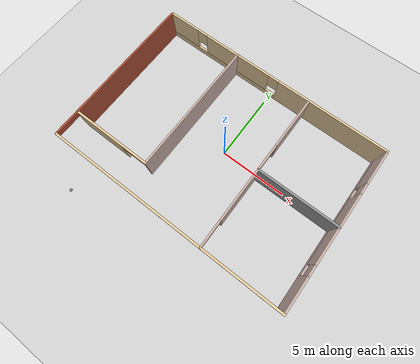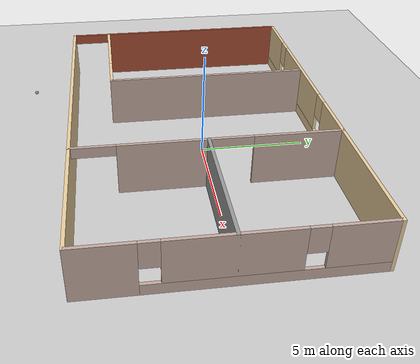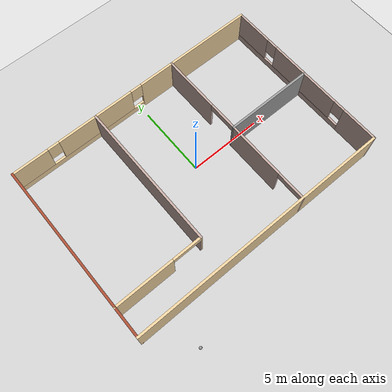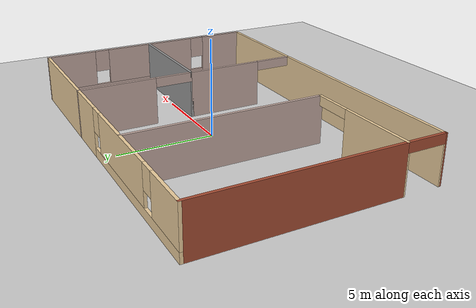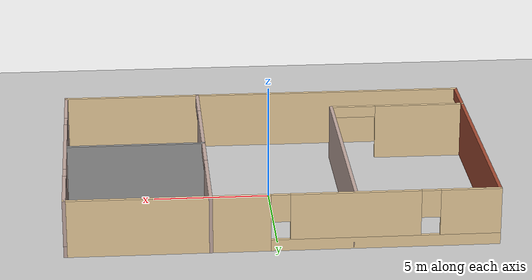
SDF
<sdf version="1.6">
 <world name="default">
  <light name="sun" type="directional">
   <pose>0 0 10 0 -0 0</pose>
   <diffuse>0.8 0.8 0.8 1</diffuse>
   <specular>0.2 0.2 0.2 1</specular>
   <attenuation>
    <range>1000</range>
    <constant>0.9</constant>
    <linear>0.01</linear>
    <quadratic>0.001</quadratic>
   </attenuation>
   <direction>-0.5 0.1 -0.9</direction>
  </light>
  <model name="ground_plane">
   <static>1</static>
   <link name="link">
    <collision name="collision">
     <geometry><plane><normal>0 0 1</normal><size>100 100</size></plane></geometry>
     <surface><friction><ode><mu>100</mu><mu2>50</mu2></ode></friction></surface>
    </collision>
    <visual name="visual">
     <cast_shadows>0</cast_shadows>
     <geometry><plane><normal>0 0 1</normal><size>100 100</size></plane></geometry>
     <material>
      <script><uri>file://media/materials/scripts/gazebo.material</uri><name>Gazebo/Grey</name></script>
     </material>
    </visual>
   </link>
  </model>
  <gravity>0 0 -9.8</gravity>
  <magnetic_field>6e-06 2.3e-05 -4.2e-05</magnetic_field>
  <atmosphere type="adiabatic"/>
  <physics name="default_physics" default="0" type="ode">
   <max_step_size>0.001</max_step_size>
   <real_time_factor>1</real_time_factor>
   <real_time_update_rate>1000</real_time_update_rate>
  </physics>
  <scene><ambient>0.4 0.4 0.4 1</ambient><background>0.7 0.7 0.7 1</background><shadows>1</shadows></scene>
  <spherical_coordinates>
   <surface_model>EARTH_WGS84</surface_model>
   <latitude_deg>0</latitude_deg>
   <longitude_deg>0</longitude_deg>
   <elevation>0</elevation>
   <heading_deg>0</heading_deg>
  </spherical_coordinates>
  <model name="building">
   <pose>-0.188098 -0.21332 0 0 -0 0</pose>
   <link name="Wall_0">
    <collision name="Wall_0_Collision">
     <geometry><box><size>18.15 0.15 2.5</size></box></geometry>
     <pose>0 0 1.25 0 -0 0</pose>
    </collision>
    <visual name="Wall_0_Visual">
     <pose>0 0 1.25 0 -0 0</pose>
     <geometry><box><size>18.15 0.15 2.5</size></box></geometry>
     <material>
      <script><uri>file://media/materials/scripts/gazebo.material</uri><name>Gazebo/Grey</name></script>
      <ambient>0.921569 0.807843 0.615686 1</ambient>
     </material>
     <meta><layer>0</layer></meta>
    </visual>
    <pose>0 -6 0 0 -0 0</pose>
   </link>
   <link name="Wall_10">
    <pose>3 0 0 0 -0 1.5708</pose>
    <visual name="Wall_10_Visual_0">
     <pose>-6.0375 0 1.25 0 -0 0</pose>
     <geometry><box><size>0.075 0.15 2.5</size></box></geometry>
     <material>
      <script><uri>file://media/materials/scripts/gazebo.material</uri><name>Gazebo/Grey</name></script>
      <ambient>0.760784 0.662745 0.627451 1</ambient>
     </material>
     <meta><layer>0</layer></meta>
    </visual>
    <collision name="Wall_10_Collision_0">
     <geometry><box><size>0.075 0.15 2.5</size></box></geometry>
     <pose>-6.0375 0 1.25 0 -0 0</pose>
    </collision>
    <visual name="Wall_10_Visual_1">
     <pose>-2 0 1.25 0 -0 0</pose>
     <geometry><box><size>4 0.15 2.5</size></box></geometry>
     <material>
      <script><uri>file://media/materials/scripts/gazebo.material</uri><name>Gazebo/Grey</name></script>
      <ambient>0.760784 0.662745 0.627451 1</ambient>
     </material>
     <meta><layer>0</layer></meta>
    </visual>
    <collision name="Wall_10_Collision_1">
     <geometry><box><size>4 0.15 2.5</size></box></geometry>
     <pose>-2 0 1.25 0 -0 0</pose>
    </collision>
    <visual name="Wall_10_Visual_2">
     <pose>4.0375 0 1.25 0 -0 0</pose>
     <geometry><box><size>4.075 0.15 2.5</size></box></geometry>
     <material>
      <script><uri>file://media/materials/scripts/gazebo.material</uri><name>Gazebo/Grey</name></script>
      <ambient>0.760784 0.662745 0.627451 1</ambient>
     </material>
     <meta><layer>0</layer></meta>
    </visual>
    <collision name="Wall_10_Collision_2">
     <geometry><box><size>4.075 0.15 2.5</size></box></geometry>
     <pose>4.0375 0 1.25 0 -0 0</pose>
    </collision>
    <visual name="Wall_10_Visual_3">
     <pose>-5 0 2.25 0 -0 0</pose>
     <geometry><box><size>2 0.15 0.5</size></box></geometry>
     <material>
      <script><uri>file://media/materials/scripts/gazebo.material</uri><name>Gazebo/Grey</name></script>
      <ambient>0.760784 0.662745 0.627451 1</ambient>
     </material>
     <meta><layer>0</layer></meta>
    </visual>
    <collision name="Wall_10_Collision_3">
     <geometry><box><size>2 0.15 0.5</size></box></geometry>
     <pose>-5 0 2.25 0 -0 0</pose>
    </collision>
    <visual name="Wall_10_Visual_4">
     <pose>1 0 2.25 0 -0 0</pose>
     <geometry><box><size>2 0.15 0.5</size></box></geometry>
     <material>
      <script><uri>file://media/materials/scripts/gazebo.material</uri><name>Gazebo/Grey</name></script>
      <ambient>0.760784 0.662745 0.627451 1</ambient>
     </material>
     <meta><layer>0</layer></meta>
    </visual>
    <collision name="Wall_10_Collision_4">
     <geometry><box><size>2 0.15 0.5</size></box></geometry>
     <pose>1 0 2.25 0 -0 0</pose>
    </collision>
   </link>
   <link name="Wall_12">
    <collision name="Wall_12_Collision">
     <geometry><box><size>6.15 0.15 2.5</size></box></geometry>
     <pose>0 0 1.25 0 -0 0</pose>
    </collision>
    <visual name="Wall_12_Visual">
     <pose>0 0 1.25 0 -0 0</pose>
     <geometry><box><size>6.15 0.15 2.5</size></box></geometry>
     <material>
      <script><uri>file://media/materials/scripts/gazebo.material</uri><name>Gazebo/Grey</name></script>
      <ambient>1 1 1 1</ambient>
     </material>
     <meta><layer>0</layer></meta>
    </visual>
    <pose>6 0 0 0 -0 0</pose>
   </link>
   <link name="Wall_14">
    <pose>-6 -4 0 0 -0 3.14159</pose>
    <visual name="Wall_14_Visual_0">
     <pose>-3.0375 0 1.25 0 -0 0</pose>
     <geometry><box><size>0.075 0.15 2.5</size></box></geometry>
     <material>
      <script><uri>file://media/materials/scripts/gazebo.material</uri><name>Gazebo/Grey</name></script>
      <ambient>0.921569 0.807843 0.615686 1</ambient>
     </material>
     <meta><layer>0</layer></meta>
    </visual>
    <collision name="Wall_14_Collision_0">
     <geometry><box><size>0.075 0.15 2.5</size></box></geometry>
     <pose>-3.0375 0 1.25 0 -0 0</pose>
    </collision>
    <visual name="Wall_14_Visual_1">
     <pose>1.0375 0 1.25 0 -0 0</pose>
     <geometry><box><size>4.075 0.15 2.5</size></box></geometry>
     <material>
      <script><uri>file://media/materials/scripts/gazebo.material</uri><name>Gazebo/Grey</name></script>
      <ambient>0.921569 0.807843 0.615686 1</ambient>
     </material>
     <meta><layer>0</layer></meta>
    </visual>
    <collision name="Wall_14_Collision_1">
     <geometry><box><size>4.075 0.15 2.5</size></box></geometry>
     <pose>1.0375 0 1.25 0 -0 0</pose>
    </collision>
    <visual name="Wall_14_Visual_2">
     <pose>-2 0 2.25 0 -0 0</pose>
     <geometry><box><size>2 0.15 0.5</size></box></geometry>
     <material>
      <script><uri>file://media/materials/scripts/gazebo.material</uri><name>Gazebo/Grey</name></script>
      <ambient>0.921569 0.807843 0.615686 1</ambient>
     </material>
     <meta><layer>0</layer></meta>
    </visual>
    <collision name="Wall_14_Collision_2">
     <geometry><box><size>2 0.15 0.5</size></box></geometry>
     <pose>-2 0 2.25 0 -0 0</pose>
    </collision>
   </link>
   <link name="Wall_2">
    <pose>9 0 0 0 -0 1.5708</pose>
    <visual name="Wall_2_Visual_0">
     <pose>-4.78873 0 1.25 0 -0 0</pose>
     <geometry><box><size>2.57255 0.15 2.5</size></box></geometry>
     <material>
      <script><uri>file://media/materials/scripts/gazebo.material</uri><name>Gazebo/Grey</name></script>
      <ambient>0.760784 0.662745 0.627451 1</ambient>
     </material>
     <meta><layer>0</layer></meta>
    </visual>
    <collision name="Wall_2_Collision_0">
     <geometry><box><size>2.57255 0.15 2.5</size></box></geometry>
     <pose>-4.78873 0 1.25 0 -0 0</pose>
    </collision>
    <visual name="Wall_2_Visual_1">
     <pose>1.28628 0 0.25 0 -0 0</pose>
     <geometry><box><size>9.57745 0.15 0.5</size></box></geometry>
     <material>
      <script><uri>file://media/materials/scripts/gazebo.material</uri><name>Gazebo/Grey</name></script>
      <ambient>0.760784 0.662745 0.627451 1</ambient>
     </material>
     <meta><layer>0</layer></meta>
    </visual>
    <collision name="Wall_2_Collision_1">
     <geometry><box><size>9.57745 0.15 0.5</size></box></geometry>
     <pose>1.28628 0 0.25 0 -0 0</pose>
    </collision>
    <visual name="Wall_2_Visual_2">
     <pose>-0.07576 0 1.5 0 -0 0</pose>
     <geometry><box><size>5.25338 0.15 2</size></box></geometry>
     <material>
      <script><uri>file://media/materials/scripts/gazebo.material</uri><name>Gazebo/Grey</name></script>
      <ambient>0.760784 0.662745 0.627451 1</ambient>
     </material>
     <meta><layer>0</layer></meta>
    </visual>
    <collision name="Wall_2_Collision_2">
     <geometry><box><size>5.25338 0.15 2</size></box></geometry>
     <pose>-0.07576 0 1.5 0 -0 0</pose>
    </collision>
    <visual name="Wall_2_Visual_3">
     <pose>4.71296 0 1.5 0 -0 0</pose>
     <geometry><box><size>2.72407 0.15 2</size></box></geometry>
     <material>
      <script><uri>file://media/materials/scripts/gazebo.material</uri><name>Gazebo/Grey</name></script>
      <ambient>0.760784 0.662745 0.627451 1</ambient>
     </material>
     <meta><layer>0</layer></meta>
    </visual>
    <collision name="Wall_2_Collision_3">
     <geometry><box><size>2.72407 0.15 2</size></box></geometry>
     <pose>4.71296 0 1.5 0 -0 0</pose>
    </collision>
    <visual name="Wall_2_Visual_4">
     <pose>-3.10245 0 1.9 0 -0 0</pose>
     <geometry><box><size>0.8 0.15 1.2</size></box></geometry>
     <material>
      <script><uri>file://media/materials/scripts/gazebo.material</uri><name>Gazebo/Grey</name></script>
      <ambient>0.760784 0.662745 0.627451 1</ambient>
     </material>
     <meta><layer>0</layer></meta>
    </visual>
    <collision name="Wall_2_Collision_4">
     <geometry><box><size>0.8 0.15 1.2</size></box></geometry>
     <pose>-3.10245 0 1.9 0 -0 0</pose>
    </collision>
    <visual name="Wall_2_Visual_5">
     <pose>2.95093 0 1.9 0 -0 0</pose>
     <geometry><box><size>0.8 0.15 1.2</size></box></geometry>
     <material>
      <script><uri>file://media/materials/scripts/gazebo.material</uri><name>Gazebo/Grey</name></script>
      <ambient>0.760784 0.662745 0.627451 1</ambient>
     </material>
     <meta><layer>0</layer></meta>
    </visual>
    <collision name="Wall_2_Collision_5">
     <geometry><box><size>0.8 0.15 1.2</size></box></geometry>
     <pose>2.95093 0 1.9 0 -0 0</pose>
    </collision>
   </link>
   <link name="Wall_4">
    <pose>0 6 0 0 -0 3.14159</pose>
    <visual name="Wall_4_Visual_0">
     <pose>-4.79415 0 1.25 0 -0 0</pose>
     <geometry><box><size>8.56169 0.15 2.5</size></box></geometry>
     <material>
      <script><uri>file://media/materials/scripts/gazebo.material</uri><name>Gazebo/Grey</name></script>
      <ambient>0.921569 0.807843 0.615686 1</ambient>
     </material>
     <meta><layer>0</layer></meta>
    </visual>
    <collision name="Wall_4_Collision_0">
     <geometry><box><size>8.56169 0.15 2.5</size></box></geometry>
     <pose>-4.79415 0 1.25 0 -0 0</pose>
    </collision>
    <visual name="Wall_4_Visual_1">
     <pose>4.28085 0 0.25 0 -0 0</pose>
     <geometry><box><size>9.58831 0.15 0.5</size></box></geometry>
     <material>
      <script><uri>file://media/materials/scripts/gazebo.material</uri><name>Gazebo/Grey</name></script>
      <ambient>0.921569 0.807843 0.615686 1</ambient>
     </material>
     <meta><layer>0</layer></meta>
    </visual>
    <collision name="Wall_4_Collision_1">
     <geometry><box><size>9.58831 0.15 0.5</size></box></geometry>
     <pose>4.28085 0 0.25 0 -0 0</pose>
    </collision>
    <visual name="Wall_4_Visual_2">
     <pose>3.0069 0 1.5 0 -0 0</pose>
     <geometry><box><size>5.44041 0.15 2</size></box></geometry>
     <material>
      <script><uri>file://media/materials/scripts/gazebo.material</uri><name>Gazebo/Grey</name></script>
      <ambient>0.921569 0.807843 0.615686 1</ambient>
     </material>
     <meta><layer>0</layer></meta>
    </visual>
    <collision name="Wall_4_Collision_2">
     <geometry><box><size>5.44041 0.15 2</size></box></geometry>
     <pose>3.0069 0 1.5 0 -0 0</pose>
    </collision>
    <visual name="Wall_4_Visual_3">
     <pose>7.80105 0 1.5 0 -0 0</pose>
     <geometry><box><size>2.5479 0.15 2</size></box></geometry>
     <material>
      <script><uri>file://media/materials/scripts/gazebo.material</uri><name>Gazebo/Grey</name></script>
      <ambient>0.921569 0.807843 0.615686 1</ambient>
     </material>
     <meta><layer>0</layer></meta>
    </visual>
    <collision name="Wall_4_Collision_3">
     <geometry><box><size>2.5479 0.15 2</size></box></geometry>
     <pose>7.80105 0 1.5 0 -0 0</pose>
    </collision>
    <visual name="Wall_4_Visual_4">
     <pose>-0.113307 0 1.9 0 -0 0</pose>
     <geometry><box><size>0.8 0.15 1.2</size></box></geometry>
     <material>
      <script><uri>file://media/materials/scripts/gazebo.material</uri><name>Gazebo/Grey</name></script>
      <ambient>0.921569 0.807843 0.615686 1</ambient>
     </material>
     <meta><layer>0</layer></meta>
    </visual>
    <collision name="Wall_4_Collision_4">
     <geometry><box><size>0.8 0.15 1.2</size></box></geometry>
     <pose>-0.113307 0 1.9 0 -0 0</pose>
    </collision>
    <visual name="Wall_4_Visual_5">
     <pose>6.1271 0 1.9 0 -0 0</pose>
     <geometry><box><size>0.8 0.15 1.2</size></box></geometry>
     <material>
      <script><uri>file://media/materials/scripts/gazebo.material</uri><name>Gazebo/Grey</name></script>
      <ambient>0.921569 0.807843 0.615686 1</ambient>
     </material>
     <meta><layer>0</layer></meta>
    </visual>
    <collision name="Wall_4_Collision_5">
     <geometry><box><size>0.8 0.15 1.2</size></box></geometry>
     <pose>6.1271 0 1.9 0 -0 0</pose>
    </collision>
   </link>
   <link name="Wall_6">
    <pose>-9 0 0 0 0 -1.5708</pose>
    <visual name="Wall_6_Visual_0">
     <pose>-1.0375 0 1.25 0 -0 0</pose>
     <geometry><box><size>10.075 0.15 2.5</size></box></geometry>
     <material>
      <script><uri>file://media/materials/scripts/gazebo.material</uri><name>Gazebo/Bricks</name></script>
      <ambient>1 1 1 1</ambient>
     </material>
     <meta><layer>0</layer></meta>
    </visual>
    <collision name="Wall_6_Collision_0">
     <geometry><box><size>10.075 0.15 2.5</size></box></geometry>
     <pose>-1.0375 0 1.25 0 -0 0</pose>
    </collision>
    <visual name="Wall_6_Visual_1">
     <pose>6.0375 0 1.25 0 -0 0</pose>
     <geometry><box><size>0.075 0.15 2.5</size></box></geometry>
     <material>
      <script><uri>file://media/materials/scripts/gazebo.material</uri><name>Gazebo/Bricks</name></script>
      <ambient>1 1 1 1</ambient>
     </material>
     <meta><layer>0</layer></meta>
    </visual>
    <collision name="Wall_6_Collision_1">
     <geometry><box><size>0.075 0.15 2.5</size></box></geometry>
     <pose>6.0375 0 1.25 0 -0 0</pose>
    </collision>
    <visual name="Wall_6_Visual_2">
     <pose>5 0 2.25 0 -0 0</pose>
     <geometry><box><size>2 0.15 0.5</size></box></geometry>
     <material>
      <script><uri>file://media/materials/scripts/gazebo.material</uri><name>Gazebo/Bricks</name></script>
      <ambient>1 1 1 1</ambient>
     </material>
     <meta><layer>0</layer></meta>
    </visual>
    <collision name="Wall_6_Collision_2">
     <geometry><box><size>2 0.15 0.5</size></box></geometry>
     <pose>5 0 2.25 0 -0 0</pose>
    </collision>
   </link>
   <link name="Wall_8">
    <collision name="Wall_8_Collision">
     <geometry><box><size>10.15 0.15 2.5</size></box></geometry>
     <pose>0 0 1.25 0 -0 0</pose>
    </collision>
    <visual name="Wall_8_Visual">
     <pose>0 0 1.25 0 -0 0</pose>
     <geometry><box><size>10.15 0.15 2.5</size></box></geometry>
     <material>
      <script><uri>file://media/materials/scripts/gazebo.material</uri><name>Gazebo/Grey</name></script>
      <ambient>0.760784 0.662745 0.627451 1</ambient>
     </material>
     <meta><layer>0</layer></meta>
    </visual>
    <pose>-3 1 0 0 -0 1.5708</pose>
   </link>
   <static>1</static>
  </model>
  <model name="my_ball">
   <link name="link_0">
    <inertial>
     <mass>1</mass>
     <inertia><ixx>0.1</ixx><ixy>0</ixy><ixz>0</ixz><iyy>0.1</iyy><iyz>0</iyz><izz>0.1</izz></inertia>
    </inertial>
    <visual name="visual">
     <geometry><sphere><radius>0.1</radius></sphere></geometry>
     <material>
      <lighting>1</lighting>
      <script><uri>file://media/materials/scripts/gazebo.material</uri><name>Gazebo/Grey</name></script>
      <ambient>1 1 1 1</ambient>
      <diffuse>1 1 1 1</diffuse>
      <specular>1 1 1 1</specular>
      <emissive>1 1 1 1</emissive>
      <shader type="vertex"><normal_map>__default__</normal_map></shader>
     </material>
    </visual>
    <collision name="collision">
     <geometry><sphere><radius>0.1</radius></sphere></geometry>
     <surface>
      <friction>
       <ode><mu>1</mu><mu2>1</mu2><fdir1>0 0 0</fdir1><slip1>0</slip1><slip2>0</slip2></ode>
       <torsional>
        <coefficient>1</coefficient>
        <patch_radius>0</patch_radius>
        <surface_radius>0</surface_radius>
        <use_patch_radius>1</use_patch_radius>
        <ode><slip>0</slip></ode>
       </torsional>
      </friction>
      <bounce><restitution_coefficient>0</restitution_coefficient><threshold>1e+06</threshold></bounce>
      <contact>
       <collide_without_contact>0</collide_without_contact>
       <collide_without_contact_bitmask>1</collide_without_contact_bitmask>
       <collide_bitmask>1</collide_bitmask>
       <ode>
        <soft_cfm>0</soft_cfm>
        <soft_erp>0.2</soft_erp>
        <kp>1e+13</kp>
        <kd>1</kd>
        <max_vel>0.01</max_vel>
        <min_depth>0</min_depth>
       </ode>
       <bullet>
        <split_impulse>1</split_impulse>
        <split_impulse_penetration_threshold>-0.01</split_impulse_penetration_threshold>
        <soft_cfm>0</soft_cfm>
        <soft_erp>0.2</soft_erp>
        <kp>1e+13</kp>
        <kd>1</kd>
       </bullet>
      </contact>
     </surface>
    </collision>
   </link>
   <static>0</static>
   <pose>-6.84528 -8.53538 0.1 0 -0 0</pose>
  </model>
  <plugin filename="libcollision_map_creator.so" name="collision_map_creator"/>
 </world>
</sdf>
